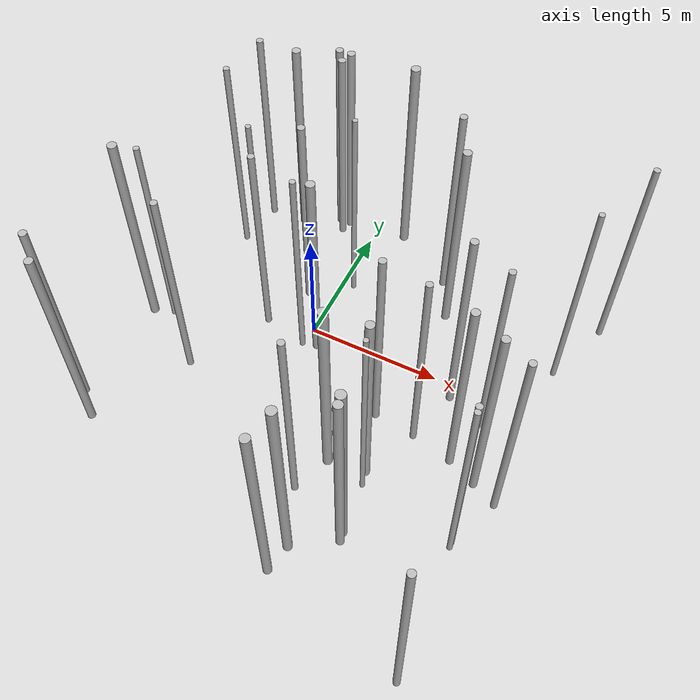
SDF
<sdf version="1.4">
 <world name="default">
  <scene><shadows>false</shadows></scene>
  <model name="forest">
   <static>true</static>
   <link name="tree0">
    <pose>1.0676397977772432 -4.0649226005537065 0 0 0 4.3293204428635645</pose>
    <visual name="visual">
     <material>
      <script><uri>model://tree_simple/scripts</uri><uri>model://tree_simple/materials/textures</uri></script>
     </material>
     <geometry><cylinder><radius>0.1390947706764279</radius><length>10</length></cylinder></geometry>
    </visual>
    <collision name="collision">
     <geometry><cylinder><radius>0.1390947706764279</radius><length>10</length></cylinder></geometry>
     <max_contacts>0</max_contacts>
    </collision>
   </link>
   <link name="tree1">
    <pose>-1.3353886836608275 6.190046175867192 0 0 0 0.11854322886683448</pose>
    <visual name="visual">
     <material>
      <script><uri>model://tree_simple/scripts</uri><uri>model://tree_simple/materials/textures</uri></script>
     </material>
     <geometry><cylinder><radius>0.10917730415457214</radius><length>10</length></cylinder></geometry>
    </visual>
    <collision name="collision">
     <geometry><cylinder><radius>0.10917730415457214</radius><length>10</length></cylinder></geometry>
     <max_contacts>0</max_contacts>
    </collision>
   </link>
   <link name="tree2">
    <pose>1.7724464651589997 -7.575048167459107 0 0 0 5.805906843155453</pose>
    <visual name="visual">
     <material>
      <script><uri>model://tree_simple/scripts</uri><uri>model://tree_simple/materials/textures</uri></script>
     </material>
     <geometry><cylinder><radius>0.1803542242935254</radius><length>10</length></cylinder></geometry>
    </visual>
    <collision name="collision">
     <geometry><cylinder><radius>0.1803542242935254</radius><length>10</length></cylinder></geometry>
     <max_contacts>0</max_contacts>
    </collision>
   </link>
   <link name="tree3">
    <pose>-1.943190245797382 2.312083027797957 0 0 0 4.209870748582904</pose>
    <visual name="visual">
     <material>
      <script><uri>model://tree_simple/scripts</uri><uri>model://tree_simple/materials/textures</uri></script>
     </material>
     <geometry><cylinder><radius>0.12136070175245092</radius><length>10</length></cylinder></geometry>
    </visual>
    <collision name="collision">
     <geometry><cylinder><radius>0.12136070175245092</radius><length>10</length></cylinder></geometry>
     <max_contacts>0</max_contacts>
    </collision>
   </link>
   <link name="tree4">
    <pose>7.392142331415073 -0.7931054189066185 0 0 0 4.750340840856281</pose>
    <visual name="visual">
     <material>
      <script><uri>model://tree_simple/scripts</uri><uri>model://tree_simple/materials/textures</uri></script>
     </material>
     <geometry><cylinder><radius>0.16230285978351758</radius><length>10</length></cylinder></geometry>
    </visual>
    <collision name="collision">
     <geometry><cylinder><radius>0.16230285978351758</radius><length>10</length></cylinder></geometry>
     <max_contacts>0</max_contacts>
    </collision>
   </link>
   <link name="tree5">
    <pose>6.6066170495504934 1.883329670604379 0 0 0 5.4322875826658885</pose>
    <visual name="visual">
     <material>
      <script><uri>model://tree_simple/scripts</uri><uri>model://tree_simple/materials/textures</uri></script>
     </material>
     <geometry><cylinder><radius>0.13276218549529772</radius><length>10</length></cylinder></geometry>
    </visual>
    <collision name="collision">
     <geometry><cylinder><radius>0.13276218549529772</radius><length>10</length></cylinder></geometry>
     <max_contacts>0</max_contacts>
    </collision>
   </link>
   <link name="tree6">
    <pose>9.603466312039455 8.65728294930895 0 0 0 2.4613955537194325</pose>
    <visual name="visual">
     <material>
      <script><uri>model://tree_simple/scripts</uri><uri>model://tree_simple/materials/textures</uri></script>
     </material>
     <geometry><cylinder><radius>0.13076442687163878</radius><length>10</length></cylinder></geometry>
    </visual>
    <collision name="collision">
     <geometry><cylinder><radius>0.13076442687163878</radius><length>10</length></cylinder></geometry>
     <max_contacts>0</max_contacts>
    </collision>
   </link>
   <link name="tree7">
    <pose>-4.794713224352152 4.118203571643917 0 0 0 5.8666481593648525</pose>
    <visual name="visual">
     <material>
      <script><uri>model://tree_simple/scripts</uri><uri>model://tree_simple/materials/textures</uri></script>
     </material>
     <geometry><cylinder><radius>0.1130931525094739</radius><length>10</length></cylinder></geometry>
    </visual>
    <collision name="collision">
     <geometry><cylinder><radius>0.1130931525094739</radius><length>10</length></cylinder></geometry>
     <max_contacts>0</max_contacts>
    </collision>
   </link>
   <link name="tree8">
    <pose>8.48993300161332 5.679563916067604 0 0 0 4.812505253503849</pose>
    <visual name="visual">
     <material>
      <script><uri>model://tree_simple/scripts</uri><uri>model://tree_simple/materials/textures</uri></script>
     </material>
     <geometry><cylinder><radius>0.11666771922300535</radius><length>10</length></cylinder></geometry>
    </visual>
    <collision name="collision">
     <geometry><cylinder><radius>0.11666771922300535</radius><length>10</length></cylinder></geometry>
     <max_contacts>0</max_contacts>
    </collision>
   </link>
   <link name="tree9">
    <pose>3.1240068321286802 6.462640846227362 0 0 0 2.1179575849713084</pose>
    <visual name="visual">
     <material>
      <script><uri>model://tree_simple/scripts</uri><uri>model://tree_simple/materials/textures</uri></script>
     </material>
     <geometry><cylinder><radius>0.17761848979338393</radius><length>10</length></cylinder></geometry>
    </visual>
    <collision name="collision">
     <geometry><cylinder><radius>0.17761848979338393</radius><length>10</length></cylinder></geometry>
     <max_contacts>0</max_contacts>
    </collision>
   </link>
   <link name="tree10">
    <pose>-0.48991035671259553 9.938655253454968 0 0 0 3.555778813426028</pose>
    <visual name="visual">
     <material>
      <script><uri>model://tree_simple/scripts</uri><uri>model://tree_simple/materials/textures</uri></script>
     </material>
     <geometry><cylinder><radius>0.1952764185341375</radius><length>10</length></cylinder></geometry>
    </visual>
    <collision name="collision">
     <geometry><cylinder><radius>0.1952764185341375</radius><length>10</length></cylinder></geometry>
     <max_contacts>0</max_contacts>
    </collision>
   </link>
   <link name="tree11">
    <pose>8.469087855625329 -1.28730281231298 0 0 0 2.86732465135089</pose>
    <visual name="visual">
     <material>
      <script><uri>model://tree_simple/scripts</uri><uri>model://tree_simple/materials/textures</uri></script>
     </material>
     <geometry><cylinder><radius>0.143758371105327</radius><length>10</length></cylinder></geometry>
    </visual>
    <collision name="collision">
     <geometry><cylinder><radius>0.143758371105327</radius><length>10</length></cylinder></geometry>
     <max_contacts>0</max_contacts>
    </collision>
   </link>
   <link name="tree12">
    <pose>2.2653819832709665 8.188525339835582 0 0 0 2.7401864888075456</pose>
    <visual name="visual">
     <material>
      <script><uri>model://tree_simple/scripts</uri><uri>model://tree_simple/materials/textures</uri></script>
     </material>
     <geometry><cylinder><radius>0.15475974911783147</radius><length>10</length></cylinder></geometry>
    </visual>
    <collision name="collision">
     <geometry><cylinder><radius>0.15475974911783147</radius><length>10</length></cylinder></geometry>
     <max_contacts>0</max_contacts>
    </collision>
   </link>
   <link name="tree13">
    <pose>-3.9101490469022053 2.777522782800075 0 0 0 4.224507705683801</pose>
    <visual name="visual">
     <material>
      <script><uri>model://tree_simple/scripts</uri><uri>model://tree_simple/materials/textures</uri></script>
     </material>
     <geometry><cylinder><radius>0.13909257654537618</radius><length>10</length></cylinder></geometry>
    </visual>
    <collision name="collision">
     <geometry><cylinder><radius>0.13909257654537618</radius><length>10</length></cylinder></geometry>
     <max_contacts>0</max_contacts>
    </collision>
   </link>
   <link name="tree14">
    <pose>-3.704158687442469 9.62973929414354 0 0 0 2.430695552250994</pose>
    <visual name="visual">
     <material>
      <script><uri>model://tree_simple/scripts</uri><uri>model://tree_simple/materials/textures</uri></script>
     </material>
     <geometry><cylinder><radius>0.15726085101986464</radius><length>10</length></cylinder></geometry>
    </visual>
    <collision name="collision">
     <geometry><cylinder><radius>0.15726085101986464</radius><length>10</length></cylinder></geometry>
     <max_contacts>0</max_contacts>
    </collision>
   </link>
   <link name="tree15">
    <pose>-5.260432512724642 8.830384428922194 0 0 0 2.8840922427307976</pose>
    <visual name="visual">
     <material>
      <script><uri>model://tree_simple/scripts</uri><uri>model://tree_simple/materials/textures</uri></script>
     </material>
     <geometry><cylinder><radius>0.18014517833482224</radius><length>10</length></cylinder></geometry>
    </visual>
    <collision name="collision">
     <geometry><cylinder><radius>0.18014517833482224</radius><length>10</length></cylinder></geometry>
     <max_contacts>0</max_contacts>
    </collision>
   </link>
   <link name="tree16">
    <pose>-3.1914281162666818 9.64446390289348 0 0 0 4.024066841535437</pose>
    <visual name="visual">
     <material>
      <script><uri>model://tree_simple/scripts</uri><uri>model://tree_simple/materials/textures</uri></script>
     </material>
     <geometry><cylinder><radius>0.17113581150579948</radius><length>10</length></cylinder></geometry>
    </visual>
    <collision name="collision">
     <geometry><cylinder><radius>0.17113581150579948</radius><length>10</length></cylinder></geometry>
     <max_contacts>0</max_contacts>
    </collision>
   </link>
   <link name="tree17">
    <pose>1.6960687613411665 -2.405668883451546 0 0 0 3.281503779770711</pose>
    <visual name="visual">
     <material>
      <script><uri>model://tree_simple/scripts</uri><uri>model://tree_simple/materials/textures</uri></script>
     </material>
     <geometry><cylinder><radius>0.19960180549194304</radius><length>10</length></cylinder></geometry>
    </visual>
    <collision name="collision">
     <geometry><cylinder><radius>0.19960180549194304</radius><length>10</length></cylinder></geometry>
     <max_contacts>0</max_contacts>
    </collision>
   </link>
   <link name="tree18">
    <pose>3.710021909198387 -5.310643599751865 0 0 0 2.495962858246607</pose>
    <visual name="visual">
     <material>
      <script><uri>model://tree_simple/scripts</uri><uri>model://tree_simple/materials/textures</uri></script>
     </material>
     <geometry><cylinder><radius>0.17520544245845057</radius><length>10</length></cylinder></geometry>
    </visual>
    <collision name="collision">
     <geometry><cylinder><radius>0.17520544245845057</radius><length>10</length></cylinder></geometry>
     <max_contacts>0</max_contacts>
    </collision>
   </link>
   <link name="tree19">
    <pose>-7.216066686523357 6.635494708293493 0 0 0 6.168690601348569</pose>
    <visual name="visual">
     <material>
      <script><uri>model://tree_simple/scripts</uri><uri>model://tree_simple/materials/textures</uri></script>
     </material>
     <geometry><cylinder><radius>0.1290131436123626</radius><length>10</length></cylinder></geometry>
    </visual>
    <collision name="collision">
     <geometry><cylinder><radius>0.1290131436123626</radius><length>10</length></cylinder></geometry>
     <max_contacts>0</max_contacts>
    </collision>
   </link>
   <link name="tree20">
    <pose>-5.833368682203113 -0.7563560245411427 0 0 0 2.9054202051190465</pose>
    <visual name="visual">
     <material>
      <script><uri>model://tree_simple/scripts</uri><uri>model://tree_simple/materials/textures</uri></script>
     </material>
     <geometry><cylinder><radius>0.1414031117434203</radius><length>10</length></cylinder></geometry>
    </visual>
    <collision name="collision">
     <geometry><cylinder><radius>0.1414031117434203</radius><length>10</length></cylinder></geometry>
     <max_contacts>0</max_contacts>
    </collision>
   </link>
   <link name="tree21">
    <pose>4.969921886043103 2.565093738629905 0 0 0 1.2047220389295317</pose>
    <visual name="visual">
     <material>
      <script><uri>model://tree_simple/scripts</uri><uri>model://tree_simple/materials/textures</uri></script>
     </material>
     <geometry><cylinder><radius>0.15671144961831363</radius><length>10</length></cylinder></geometry>
    </visual>
    <collision name="collision">
     <geometry><cylinder><radius>0.15671144961831363</radius><length>10</length></cylinder></geometry>
     <max_contacts>0</max_contacts>
    </collision>
   </link>
   <link name="tree22">
    <pose>-2.977809106790832 4.941309793399611 0 0 0 1.5365206017086825</pose>
    <visual name="visual">
     <material>
      <script><uri>model://tree_simple/scripts</uri><uri>model://tree_simple/materials/textures</uri></script>
     </material>
     <geometry><cylinder><radius>0.1548702883487692</radius><length>10</length></cylinder></geometry>
    </visual>
    <collision name="collision">
     <geometry><cylinder><radius>0.1548702883487692</radius><length>10</length></cylinder></geometry>
     <max_contacts>0</max_contacts>
    </collision>
   </link>
   <link name="tree23">
    <pose>2.518174099853134 0.4073665950980079 0 0 0 0.49902338910639255</pose>
    <visual name="visual">
     <material>
      <script><uri>model://tree_simple/scripts</uri><uri>model://tree_simple/materials/textures</uri></script>
     </material>
     <geometry><cylinder><radius>0.15096343991082492</radius><length>10</length></cylinder></geometry>
    </visual>
    <collision name="collision">
     <geometry><cylinder><radius>0.15096343991082492</radius><length>10</length></cylinder></geometry>
     <max_contacts>0</max_contacts>
    </collision>
   </link>
   <link name="tree24">
    <pose>-9.082027576896667 -3.9469545534499906 0 0 0 5.8660874587721175</pose>
    <visual name="visual">
     <material>
      <script><uri>model://tree_simple/scripts</uri><uri>model://tree_simple/materials/textures</uri></script>
     </material>
     <geometry><cylinder><radius>0.15724842700489414</radius><length>10</length></cylinder></geometry>
    </visual>
    <collision name="collision">
     <geometry><cylinder><radius>0.15724842700489414</radius><length>10</length></cylinder></geometry>
     <max_contacts>0</max_contacts>
    </collision>
   </link>
   <link name="tree25">
    <pose>7.885567138716375 -9.207874096548476 0 0 0 2.536633275661478</pose>
    <visual name="visual">
     <material>
      <script><uri>model://tree_simple/scripts</uri><uri>model://tree_simple/materials/textures</uri></script>
     </material>
     <geometry><cylinder><radius>0.1391715927452299</radius><length>10</length></cylinder></geometry>
    </visual>
    <collision name="collision">
     <geometry><cylinder><radius>0.1391715927452299</radius><length>10</length></cylinder></geometry>
     <max_contacts>0</max_contacts>
    </collision>
   </link>
   <link name="tree26">
    <pose>-3.3321727367504517 9.103109518374232 0 0 0 1.1315968360668331</pose>
    <visual name="visual">
     <material>
      <script><uri>model://tree_simple/scripts</uri><uri>model://tree_simple/materials/textures</uri></script>
     </material>
     <geometry><cylinder><radius>0.15886486701332414</radius><length>10</length></cylinder></geometry>
    </visual>
    <collision name="collision">
     <geometry><cylinder><radius>0.15886486701332414</radius><length>10</length></cylinder></geometry>
     <max_contacts>0</max_contacts>
    </collision>
   </link>
   <link name="tree27">
    <pose>2.0041105478124184 -6.3975821537858195 0 0 0 6.246708898467513</pose>
    <visual name="visual">
     <material>
      <script><uri>model://tree_simple/scripts</uri><uri>model://tree_simple/materials/textures</uri></script>
     </material>
     <geometry><cylinder><radius>0.1921941082474648</radius><length>10</length></cylinder></geometry>
    </visual>
    <collision name="collision">
     <geometry><cylinder><radius>0.1921941082474648</radius><length>10</length></cylinder></geometry>
     <max_contacts>0</max_contacts>
    </collision>
   </link>
   <link name="tree28">
    <pose>7.566799177072777 -3.4809768276228663 0 0 0 4.839693033497563</pose>
    <visual name="visual">
     <material>
      <script><uri>model://tree_simple/scripts</uri><uri>model://tree_simple/materials/textures</uri></script>
     </material>
     <geometry><cylinder><radius>0.12574695982859443</radius><length>10</length></cylinder></geometry>
    </visual>
    <collision name="collision">
     <geometry><cylinder><radius>0.12574695982859443</radius><length>10</length></cylinder></geometry>
     <max_contacts>0</max_contacts>
    </collision>
   </link>
   <link name="tree29">
    <pose>3.291763986747643 -2.1895854028349166 0 0 0 6.2484986256405115</pose>
    <visual name="visual">
     <material>
      <script><uri>model://tree_simple/scripts</uri><uri>model://tree_simple/materials/textures</uri></script>
     </material>
     <geometry><cylinder><radius>0.17508653008819078</radius><length>10</length></cylinder></geometry>
    </visual>
    <collision name="collision">
     <geometry><cylinder><radius>0.17508653008819078</radius><length>10</length></cylinder></geometry>
     <max_contacts>0</max_contacts>
    </collision>
   </link>
   <link name="tree30">
    <pose>3.4390485238843116 -2.7885949626449724 0 0 0 4.19064196648128</pose>
    <visual name="visual">
     <material>
      <script><uri>model://tree_simple/scripts</uri><uri>model://tree_simple/materials/textures</uri></script>
     </material>
     <geometry><cylinder><radius>0.10021955497823108</radius><length>10</length></cylinder></geometry>
    </visual>
    <collision name="collision">
     <geometry><cylinder><radius>0.10021955497823108</radius><length>10</length></cylinder></geometry>
     <max_contacts>0</max_contacts>
    </collision>
   </link>
   <link name="tree31">
    <pose>3.6241559695036827 -4.960096456445033 0 0 0 5.702670152803099</pose>
    <visual name="visual">
     <material>
      <script><uri>model://tree_simple/scripts</uri><uri>model://tree_simple/materials/textures</uri></script>
     </material>
     <geometry><cylinder><radius>0.19527047150894786</radius><length>10</length></cylinder></geometry>
    </visual>
    <collision name="collision">
     <geometry><cylinder><radius>0.19527047150894786</radius><length>10</length></cylinder></geometry>
     <max_contacts>0</max_contacts>
    </collision>
   </link>
   <link name="tree32">
    <pose>-1.316947304226641 2.489082341345801 0 0 0 3.2590974758476023</pose>
    <visual name="visual">
     <material>
      <script><uri>model://tree_simple/scripts</uri><uri>model://tree_simple/materials/textures</uri></script>
     </material>
     <geometry><cylinder><radius>0.18647143572453923</radius><length>10</length></cylinder></geometry>
    </visual>
    <collision name="collision">
     <geometry><cylinder><radius>0.18647143572453923</radius><length>10</length></cylinder></geometry>
     <max_contacts>0</max_contacts>
    </collision>
   </link>
   <link name="tree33">
    <pose>-7.9048371918745985 1.2775892591149116 0 0 0 0.632286214358194</pose>
    <visual name="visual">
     <material>
      <script><uri>model://tree_simple/scripts</uri><uri>model://tree_simple/materials/textures</uri></script>
     </material>
     <geometry><cylinder><radius>0.12276138027764784</radius><length>10</length></cylinder></geometry>
    </visual>
    <collision name="collision">
     <geometry><cylinder><radius>0.12276138027764784</radius><length>10</length></cylinder></geometry>
     <max_contacts>0</max_contacts>
    </collision>
   </link>
   <link name="tree34">
    <pose>-8.797969532996941 1.0107545144918966 0 0 0 0.8534258375751588</pose>
    <visual name="visual">
     <material>
      <script><uri>model://tree_simple/scripts</uri><uri>model://tree_simple/materials/textures</uri></script>
     </material>
     <geometry><cylinder><radius>0.19119668674420634</radius><length>10</length></cylinder></geometry>
    </visual>
    <collision name="collision">
     <geometry><cylinder><radius>0.19119668674420634</radius><length>10</length></cylinder></geometry>
     <max_contacts>0</max_contacts>
    </collision>
   </link>
   <link name="tree35">
    <pose>-8.137411663749742 -4.863050483391385 0 0 0 5.906846829142296</pose>
    <visual name="visual">
     <material>
      <script><uri>model://tree_simple/scripts</uri><uri>model://tree_simple/materials/textures</uri></script>
     </material>
     <geometry><cylinder><radius>0.16939980525282897</radius><length>10</length></cylinder></geometry>
    </visual>
    <collision name="collision">
     <geometry><cylinder><radius>0.16939980525282897</radius><length>10</length></cylinder></geometry>
     <max_contacts>0</max_contacts>
    </collision>
   </link>
   <link name="tree36">
    <pose>6.1340890401682415 -0.22884184634427207 0 0 0 3.673314241005206</pose>
    <visual name="visual">
     <material>
      <script><uri>model://tree_simple/scripts</uri><uri>model://tree_simple/materials/textures</uri></script>
     </material>
     <geometry><cylinder><radius>0.16394642494675848</radius><length>10</length></cylinder></geometry>
    </visual>
    <collision name="collision">
     <geometry><cylinder><radius>0.16394642494675848</radius><length>10</length></cylinder></geometry>
     <max_contacts>0</max_contacts>
    </collision>
   </link>
   <link name="tree37">
    <pose>-6.879753007618639 8.741154930130357 0 0 0 1.5368918229625506</pose>
    <visual name="visual">
     <material>
      <script><uri>model://tree_simple/scripts</uri><uri>model://tree_simple/materials/textures</uri></script>
     </material>
     <geometry><cylinder><radius>0.14498491635115485</radius><length>10</length></cylinder></geometry>
    </visual>
    <collision name="collision">
     <geometry><cylinder><radius>0.14498491635115485</radius><length>10</length></cylinder></geometry>
     <max_contacts>0</max_contacts>
    </collision>
   </link>
   <link name="tree38">
    <pose>7.596130433864573 -3.692235743137024 0 0 0 4.369862331360848</pose>
    <visual name="visual">
     <material>
      <script><uri>model://tree_simple/scripts</uri><uri>model://tree_simple/materials/textures</uri></script>
     </material>
     <geometry><cylinder><radius>0.11279496406927059</radius><length>10</length></cylinder></geometry>
    </visual>
    <collision name="collision">
     <geometry><cylinder><radius>0.11279496406927059</radius><length>10</length></cylinder></geometry>
     <max_contacts>0</max_contacts>
    </collision>
   </link>
   <link name="tree39">
    <pose>4.33474444131468 0.17384739951583228 0 0 0 4.981268053257665</pose>
    <visual name="visual">
     <material>
      <script><uri>model://tree_simple/scripts</uri><uri>model://tree_simple/materials/textures</uri></script>
     </material>
     <geometry><cylinder><radius>0.13658471940620073</radius><length>10</length></cylinder></geometry>
    </visual>
    <collision name="collision">
     <geometry><cylinder><radius>0.13658471940620073</radius><length>10</length></cylinder></geometry>
     <max_contacts>0</max_contacts>
    </collision>
   </link>
  </model>
  <plugin name="mrs_gazebo_link_attacher_plugin" filename="libMrsGazeboCommonResources_StaticTransformRepublisher.so"/>
  <plugin name="mrs_gazebo_rviz_cam_synchronizer" filename="libMrsGazeboCommonResources_RvizCameraSynchronizer.so"/>
  <physics name="default_physics" default="0" type="ode">
   <max_step_size>0.004</max_step_size>
   <real_time_factor>1</real_time_factor>
   <real_time_update_rate>250</real_time_update_rate>
   <gravity>0 0 -9.8066</gravity>
   <magnetic_field>6e-06 2.3e-05 -4.2e-05</magnetic_field>
   <ode>
    <solver>
     <type>quick</type>
     <iters>10</iters>
     <sor>1.3</sor>
     <use_dynamic_moi_rescaling>0</use_dynamic_moi_rescaling>
    </solver>
    <constraints>
     <cfm>0</cfm>
     <erp>0.2</erp>
     <contact_max_correcting_vel>1000</contact_max_correcting_vel>
     <contact_surface_layer>0.001</contact_surface_layer>
    </constraints>
   </ode>
  </physics>
  <spherical_coordinates>
   <surface_model>EARTH_WGS84</surface_model>
   <latitude_deg>47.397743</latitude_deg>
   <longitude_deg>8.545594</longitude_deg>
   <elevation>0.0</elevation>
   <heading_deg>0</heading_deg>
  </spherical_coordinates>
  <light name="sun" type="directional">
   <pose>0 0 1000 0.4 0.2 0</pose>
   <specular>0.6 0.6 0.6 1</specular>
   <direction>0.1 0.1 -0.9</direction>
   <attenuation>
    <range>20</range>
    <constant>0.5</constant>
    <linear>0.01</linear>
    <quadratic>0.001</quadratic>
   </attenuation>
  </light>
 </world>
</sdf>
